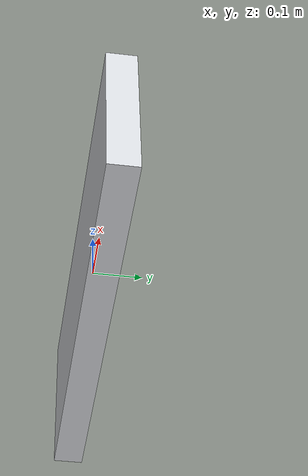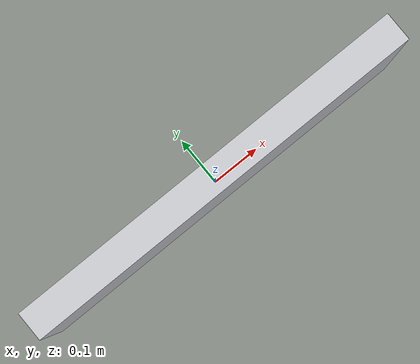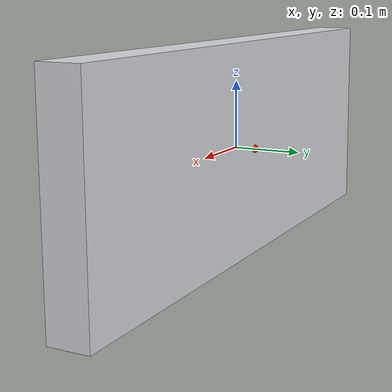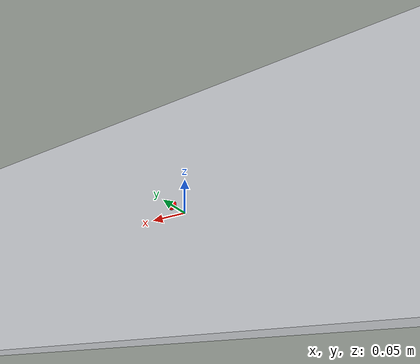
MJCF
<mujoco model="demo_panel_base">
  <worldbody>
    <body name="panel_mount" pos="0 0 0">
      <geom
        name="panel_backplate"
        type="box"
        pos="0 0 0"
        size="0.420 0.030 0.160"
        rgba="0.86 0.87 0.89 1"
        contype="1"
        conaffinity="1"
      />
      <site name="panel_origin" pos="0 0.030 0" size="0.006" rgba="1 0 0 1"/>
    </body>
  </worldbody>
</mujoco>
